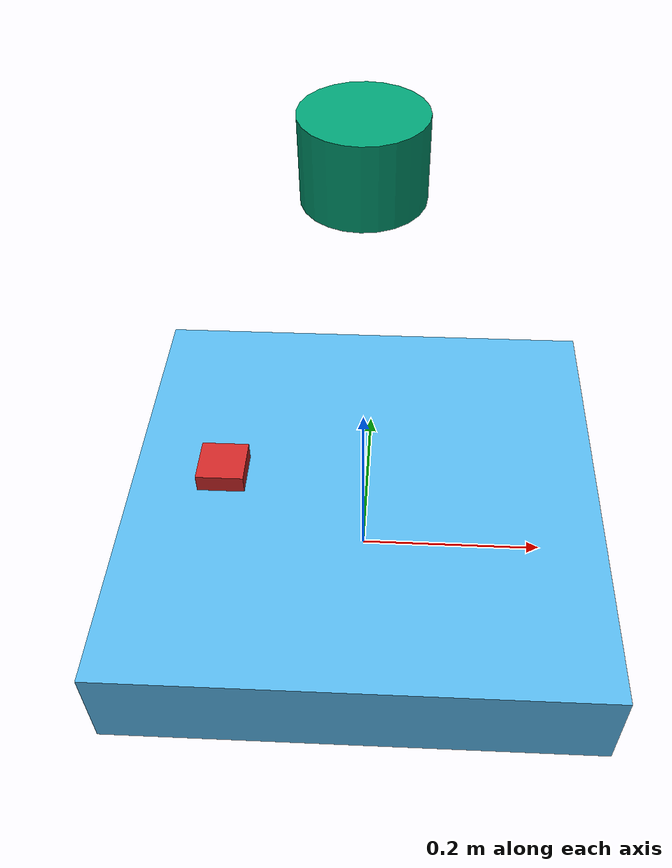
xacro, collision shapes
<?xml version="1.0"?>
<robot xmlns:xacro="http://www.ros.org/wiki/xacro" name="example">
  <xacro:arg name="gpu" default="false"/>
  <xacro:property name="gpu" value="$(arg gpu)" />

  <!-- Base Footprint -->
  <link name="base_footprint" />

  <!-- Base Link -->
  <joint name="footprint" type="fixed" >
   <parent link="base_footprint" />
    <child link="base_link" />
    <origin xyz="0 0 0.05" rpy="0 0 0" />
  </joint>
  <link name="base_link" >
    <visual>
      <geometry>
        <box size="0.5 0.5 0.1" />
      </geometry>
    </visual>
    <collision>
      <geometry>
        <box size="0.5 0.5 0.1" />
      </geometry>
    </collision>
    <inertial>
      <origin xyz="0 0 0"/>
      <mass value="10"/>
      <inertia ixx="3.0" ixy="0.0" ixz="0.0"
               iyy="3.0" iyz="0.0"
               izz="3.0" />
    </inertial>
  </link>

  <xacro:include filename="$(find velodyne_description)/urdf/VLP-16.urdf.xacro"/>
  <VLP-16 parent="base_link" name="velodyne" topic="/velodyne_points" hz="10" samples="440" gpu="${gpu}">
    <origin xyz="0 0 0.4" rpy="0 0 0" />
  </VLP-16>

  <!-- Imu link and plugin -->

    <xacro:include filename="$(find velodyne_description)/urdf/imu.urdf.xacro"/>
    <xacro:imu xyz="-0.1 0 ${0.04 + 0.01}"
                  rpy="0 0 0"
                  parent="base_link"
                  topic="/imu_data">
    </xacro:imu>

</robot>

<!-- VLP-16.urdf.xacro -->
<robot xmlns:xacro="http://www.ros.org/wiki/xacro" name="VLP-16">
  <xacro:property name="M_PI" value="3.1415926535897931" />
  <xacro:macro name="VLP-16" params="*origin is_sim:=true parent:=base_link name:=velodyne tf_prefix:='' topic:=/velodyne_points organize_cloud:=false hz:=10 lasers:=16 samples:=1875 collision_range:=0.3 min_range:=0.0 max_range:=100.0 noise:=0.008 min_angle:=-${M_PI} max_angle:=${M_PI} gpu:=false">

    <joint name="${name}_base_mount_joint" type="fixed">
      <xacro:insert_block name="origin" />
      <parent link="${parent}"/>
      <child link="${name}_base_link"/>
    </joint>

    <link name="${name}_base_link">
      <inertial>
        <mass value="0.83"/>
        <origin xyz="0 0 0.03585"/>
        <inertia ixx="${(0.83 * (3.0*0.0516*0.0516 + 0.0717*0.0717)) / 12.0}" ixy="0" ixz="0"
          iyy="${(0.83 * (3.0*0.0516*0.0516 + 0.0717*0.0717)) / 12.0}" iyz="0"
          izz="${0.5 * 0.83 * (0.0516*0.0516)}"/>
      </inertial>
      <visual>
        <geometry>
          <mesh filename="package://velodyne_description/meshes/VLP16_base_1.dae" />
        </geometry>
      </visual>
      <visual>
        <geometry>
          <mesh filename="package://velodyne_description/meshes/VLP16_base_2.dae" />
        </geometry>
      </visual>
      <collision>
        <origin rpy="0 0 0" xyz="0 0 0.03585"/>
        <geometry>
          <cylinder radius="0.0516" length="0.0717"/>
        </geometry>
      </collision>
    </link>

    <joint name="${name}_base_scan_joint" type="fixed" >
      <origin xyz="0 0 0.0377" rpy="0 0 0" />
      <parent link="${name}_base_link" />
      <child link="${name}"/>
    </joint>

    <link name="${name}">
      <inertial>
        <mass value="0.01"/>
        <origin xyz="0 0 0"/>
        <inertia ixx="1e-7" ixy="0" ixz="0" iyy="1e-7" iyz="0" izz="1e-7"/>
      </inertial>
      <visual>
        <origin xyz="0 0 -0.0377" />
        <geometry>
          <mesh filename="package://velodyne_description/meshes/VLP16_scan.dae" />
        </geometry>
      </visual>
      <collision>
        <geometry>
          <sphere radius="0"/>
        </geometry>
      </collision>
    </link>

    <!-- Gazebo requires the velodyne_gazebo_plugins package -->
    <xacro:if value="${is_sim}">
        <gazebo reference="${name}">
            <xacro:if value="${gpu}">
                <sensor type="gpu_ray" name="${name}-VLP16">
                <pose>0 0 0 0 0 0</pose>
                <visualize>false</visualize>
                <update_rate>${hz}</update_rate>
                <ray>
                    <scan>
                    <horizontal>
                        <samples>${samples}</samples>
                        <resolution>1</resolution>
                        <min_angle>${min_angle}</min_angle>
                        <max_angle>${max_angle}</max_angle>
                    </horizontal>
                    <vertical>
                        <samples>${lasers}</samples>
                        <resolution>1</resolution>
                        <min_angle>-${15.0*M_PI/180.0}</min_angle>
                        <max_angle> ${15.0*M_PI/180.0}</max_angle>
                    </vertical>
                    </scan>
                    <range>
                    <min>${collision_range}</min>
                    <max>${max_range+1}</max>
                    <resolution>0.001</resolution>
                    </range>
                    <noise>
                    <type>gaussian</type>
                    <mean>0.0</mean>
                    <stddev>0.0</stddev>
                    </noise>
                </ray>
                <plugin name="gazebo_ros_laser_controller" filename="libgazebo_ros_velodyne_laser.so">
                    <ros>
                    <namespace>/${name}</namespace>
                    <remapping>~/out:=${topic}</remapping>
                    </ros>
                    <tf_prefix>${tf_prefix}</tf_prefix>
                    <frame_name>${name}</frame_name>
                    <organize_cloud>${organize_cloud}</organize_cloud>
                    <min_range>${min_range}</min_range>
                    <max_range>${max_range}</max_range>
                    <gaussian_noise>${noise}</gaussian_noise>
                </plugin>
                </sensor>
            </xacro:if>
            <xacro:unless value="${gpu}">
                <sensor type="ray" name="${name}-VLP16">
                <pose>0 0 0 0 0 0</pose>
                <visualize>false</visualize>
                <update_rate>${hz}</update_rate>
                <ray>
                    <scan>
                    <horizontal>
                        <samples>${samples}</samples>
                        <resolution>1</resolution>
                        <min_angle>${min_angle}</min_angle>
                        <max_angle>${max_angle}</max_angle>
                    </horizontal>
                    <vertical>
                        <samples>${lasers}</samples>
                        <resolution>1</resolution>
                        <min_angle>-${15.0*M_PI/180.0}</min_angle>
                        <max_angle> ${15.0*M_PI/180.0}</max_angle>
                    </vertical>
                    </scan>
                    <range>
                    <min>${collision_range}</min>
                    <max>${max_range+1}</max>
                    <resolution>0.001</resolution>
                    </range>
                    <noise>
                    <type>gaussian</type>
                    <mean>0.0</mean>
                    <stddev>0.0</stddev>
                    </noise>
                </ray>
                <plugin name="gazebo_ros_laser_controller" filename="libgazebo_ros_velodyne_laser.so">
                    <ros>
                    <namespace>/${name}</namespace>
                    <remapping>~/out:=${topic}</remapping>
                    </ros>
                    <tf_prefix>${tf_prefix}</tf_prefix>
                    <frame_name>${name}</frame_name>
                    <organize_cloud>${organize_cloud}</organize_cloud>
                    <min_range>${min_range}</min_range>
                    <max_range>${max_range}</max_range>
                    <gaussian_noise>${noise}</gaussian_noise>
                </plugin>
                </sensor>
            </xacro:unless>
        </gazebo>
    </xacro:if>

  </xacro:macro>
</robot>

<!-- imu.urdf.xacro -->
<robot xmlns:xacro="http://www.ros.org/wiki/xacro" name="imu">

<xacro:macro name="imu" params="xyz rpy parent topic" >

    <link name="imu_sensor_link">
        <collision>
            <origin xyz="-0.25 0 0.07" rpy="0 0 0"/>
            <geometry>
                <box size="0.05 0.05 0.02"/>
            </geometry>
        </collision>
        <visual>
            <origin xyz="-0.25 0 0.07" rpy="0 0 0"/>
            <geometry>
                <box size="0.05 0.05 0.02"/>
            </geometry>
            <material name="iRobot/Red"/>
        </visual>
        <inertial>
            <mass value="0.001" />
            <origin xyz="0 0 0" rpy="0 0 0"/>
            <inertia ixx="0.00000015" ixy="0" ixz="0" iyy="0.00000015" iyz="0" izz="0.00000015" />
        </inertial>
    </link>

    <joint name="imu_sensor_joint" type="fixed">
        <axis xyz="0 0 0" />
        <origin xyz=".1 0 0" rpy="0 0 0"/>
        <parent link="base_link"/>
        <child link="imu_sensor_link"/>
    </joint>

  <gazebo reference="imu_sensor_link">
        <gravity>true</gravity>
        <sensor name="imu_sensor" type="imu">
            <always_on>true</always_on>
            <update_rate>100</update_rate>
            <visualize>true</visualize>
            <topic>__default_topic__</topic>
            <plugin filename="libgazebo_ros_imu_sensor.so" name="imu_plugin">
                <topicName>imu_sensor</topicName>
                <bodyName>imu_sensor_link</bodyName>
                <updateRateHZ>100.0</updateRateHZ>
                <gaussianNoise>0.0</gaussianNoise>
                <xyzOffset>0 0 0</xyzOffset>
                <rpyOffset>0 0 0</rpyOffset>
                <frameName>imu_sensor_link</frameName>
                <initialOrientationAsReference>false</initialOrientationAsReference>
            </plugin>
            <pose>0 0 0 0 0 0</pose>
        </sensor>
  </gazebo>

</xacro:macro>

</robot>
